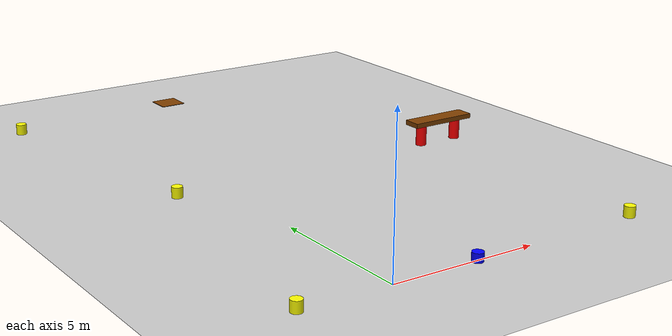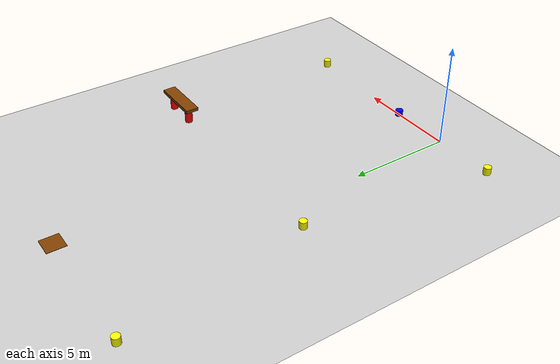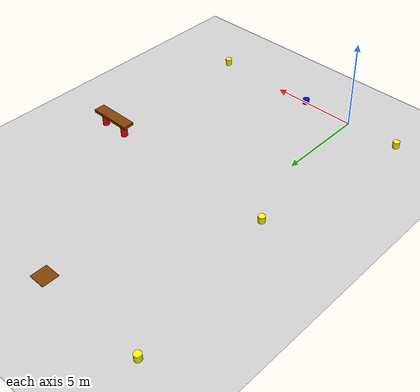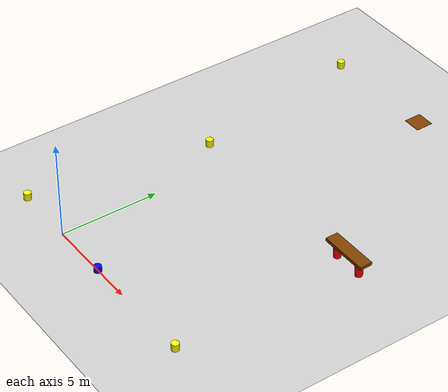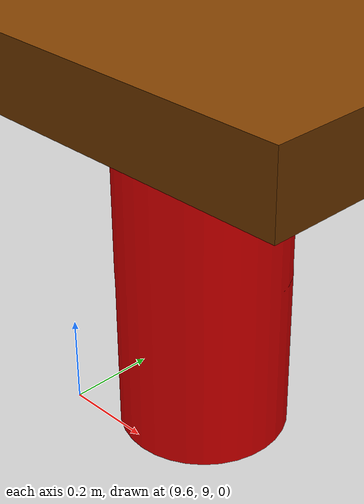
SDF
<sdf version="1.6">
 <world name="simple">
  <physics name="1ms" type="ode">
   <max_step_size>0.001</max_step_size>
   <real_time_factor>1.0</real_time_factor>
  </physics>
  <plugin filename="gz-sim-physics-system" name="gz::sim::systems::Physics"/>
  <plugin filename="gz-sim-user-commands-system" name="gz::sim::systems::UserCommands"/>
  <plugin filename="gz-sim-scene-broadcaster-system" name="gz::sim::systems::SceneBroadcaster"/>
  <plugin filename="gz-sim-sensors-system" name="gz::sim::systems::Sensors">
   <render_engine>ogre2</render_engine>
  </plugin>
  <plugin filename="gz-sim-contact-system" name="gz::sim::systems::Contact"/>
  <light type="directional" name="sun">
   <pose>10 0 10 0 0 0</pose>
   <diffuse>0.8 0.8 0.8 1</diffuse>
   <specular>0.2 0.2 0.2 1</specular>
   <attenuation>
    <range>1000</range>
    <constant>0.9</constant>
    <linear>0.01</linear>
    <quadratic>0.001</quadratic>
   </attenuation>
   <direction>-0.5 0.1 -0.9</direction>
  </light>
  <model name="ground">
   <static>true</static>
   <link name="ground_link">
    <collision name="collision1">
     <geometry><plane><normal>0 0 1</normal><size>100000 100000</size></plane></geometry>
    </collision>
    <visual name="visual1">
     <geometry><plane><normal>0 0 1</normal><size>100000 100000</size></plane></geometry>
    </visual>
   </link>
  </model>
  <model name="yellow_cylinder1">
   <pose>3 0 -0.1 0 0 0</pose>
   <link name="body">
    <collision name="collision1">
     <geometry><cylinder><radius>0.5</radius><length>1.0</length></cylinder></geometry>
    </collision>
    <visual name="visual1">
     <geometry>
      <mesh>
       <uri>file:///home/houndsito/vt-cro/robogamescode/car_ws/src/mini_car_bot/worlds/meshes/yellow1.stl</uri>
      </mesh>
     </geometry>
     <material><ambient>1 1 0 1</ambient><diffuse>1 1 0 1</diffuse></material>
    </visual>
   </link>
  </model>
  <model name="yellow_cylinder3">
   <pose>3 0 -0.1 0 0 0</pose>
   <link name="body">
    <collision name="collision1">
     <geometry><cylinder><radius>0.5</radius><length>1.0</length></cylinder></geometry>
    </collision>
    <visual name="visual1">
     <geometry>
      <mesh>
       <uri>file:///home/houndsito/vt-cro/robogamescode/car_ws/src/mini_car_bot/worlds/meshes/yellow3.stl</uri>
      </mesh>
     </geometry>
     <material><ambient>1 1 0 1</ambient><diffuse>1 1 0 1</diffuse></material>
    </visual>
   </link>
  </model>
  <model name="yellow_cylinder4">
   <pose>3 0 -0.1 0 0 0</pose>
   <link name="body">
    <collision name="collision1">
     <geometry><cylinder><radius>0.5</radius><length>1.0</length></cylinder></geometry>
    </collision>
    <visual name="visual1">
     <geometry>
      <mesh>
       <uri>file:///home/houndsito/vt-cro/robogamescode/car_ws/src/mini_car_bot/worlds/meshes/yellow4.stl</uri>
      </mesh>
     </geometry>
     <material><ambient>1 1 0 1</ambient><diffuse>1 1 0 1</diffuse></material>
    </visual>
   </link>
  </model>
  <model name="yellow_cylinder5">
   <pose>3 0 -0.1 0 0 0</pose>
   <link name="body">
    <collision name="collision1">
     <geometry><cylinder><radius>0.5</radius><length>1.0</length></cylinder></geometry>
    </collision>
    <visual name="visual1">
     <geometry>
      <mesh>
       <uri>file:///home/houndsito/vt-cro/robogamescode/car_ws/src/mini_car_bot/worlds/meshes/yellow5.stl</uri>
      </mesh>
     </geometry>
     <material><ambient>1 1 0 1</ambient><diffuse>1 1 0 1</diffuse></material>
    </visual>
   </link>
  </model>
  <model name="blue_cylinder">
   <pose>3 0 -0.1 0 0 0</pose>
   <link name="body">
    <collision name="collision1">
     <geometry><cylinder><radius>0.5</radius><length>1.0</length></cylinder></geometry>
    </collision>
    <visual name="visual1">
     <geometry>
      <mesh>
       <uri>file:///home/houndsito/vt-cro/robogamescode/car_ws/src/mini_car_bot/worlds/meshes/blue.stl</uri>
      </mesh>
     </geometry>
     <material><ambient>0 0 1 1</ambient><diffuse>0 0 1 1</diffuse></material>
    </visual>
   </link>
  </model>
  <model name="red_cylinder1">
   <pose>3 0 -0.1 0 0 0</pose>
   <link name="body">
    <collision name="collision1">
     <geometry><cylinder><radius>0.5</radius><length>1.0</length></cylinder></geometry>
    </collision>
    <visual name="visual1">
     <geometry>
      <mesh>
       <uri>file:///home/houndsito/vt-cro/robogamescode/car_ws/src/mini_car_bot/worlds/meshes/red1.stl</uri>
      </mesh>
     </geometry>
     <material><ambient>1 0 0 1</ambient><diffuse>1 0 0 1</diffuse></material>
    </visual>
   </link>
  </model>
  <model name="red_cylinder2">
   <pose>3 0 -0.1 0 0 0</pose>
   <link name="body">
    <collision name="collision1">
     <geometry><cylinder><radius>0.5</radius><length>1.0</length></cylinder></geometry>
    </collision>
    <visual name="visual1">
     <geometry>
      <mesh>
       <uri>file:///home/houndsito/vt-cro/robogamescode/car_ws/src/mini_car_bot/worlds/meshes/red2.stl</uri>
      </mesh>
     </geometry>
     <material><ambient>1 0 0 1</ambient><diffuse>1 0 0 1</diffuse></material>
    </visual>
   </link>
  </model>
  <model name="wood">
   <pose>3 0 -0.1 0 0 0</pose>
   <link name="body">
    <collision name="collision1"><geometry><box><size>1 1 1</size></box></geometry></collision>
    <visual name="visual1">
     <geometry>
      <mesh>
       <uri>file:///home/houndsito/vt-cro/robogamescode/car_ws/src/mini_car_bot/worlds/meshes/wood.stl</uri>
       <scale>1 1 1</scale>
      </mesh>
     </geometry>
     <material><ambient>0.5 0.25 0 1</ambient><diffuse>0.5 0.25 0 1</diffuse></material>
    </visual>
   </link>
  </model>
  <model name="ramp">
   <pose>3 0 -0.1 0 0 0</pose>
   <link name="body">
    <collision name="collision1"><geometry><box><size>1 1 1</size></box></geometry></collision>
    <visual name="visual1">
     <geometry>
      <mesh>
       <uri>file:///home/houndsito/vt-cro/robogamescode/car_ws/src/mini_car_bot/worlds/meshes/ramp.stl</uri>
       <scale>1 1 1</scale>
      </mesh>
     </geometry>
     <material><ambient>0.5 0.25 0 1</ambient><diffuse>0.5 0.25 0 1</diffuse></material>
    </visual>
   </link>
  </model>
 </world>
</sdf>
